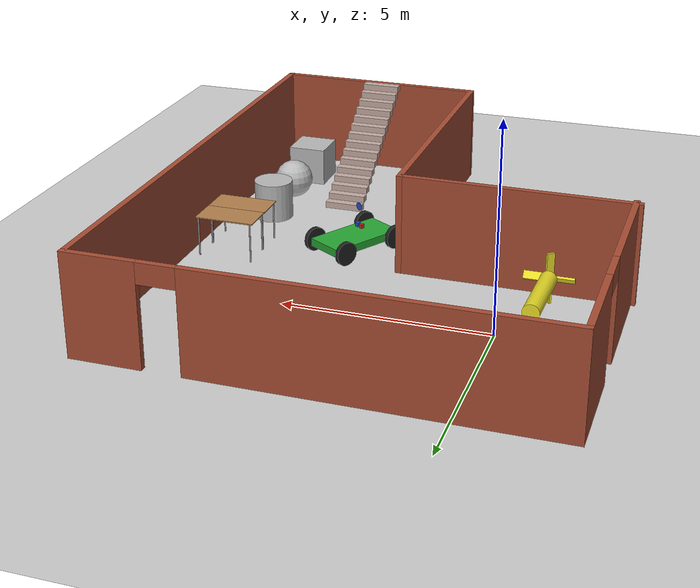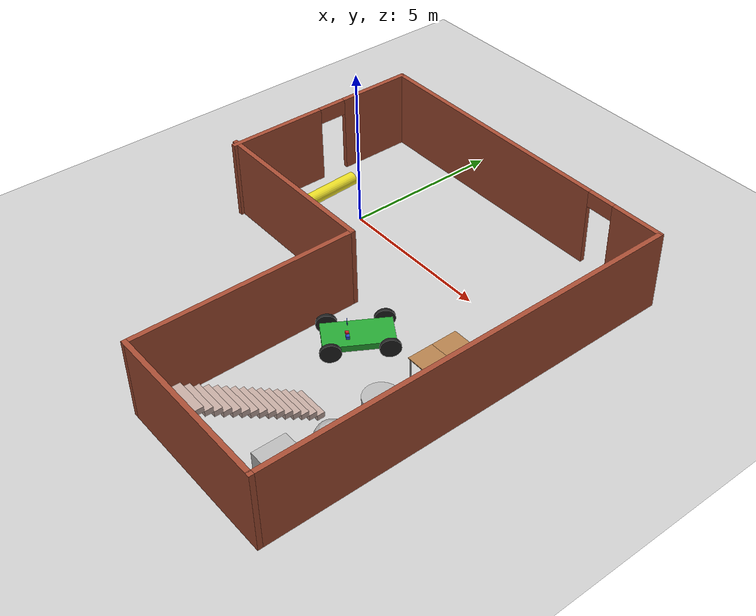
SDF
<sdf version="1.7">
 <world name="default">
  <model name="ground_plane">
   <static>1</static>
   <link name="link">
    <collision name="collision">
     <geometry><plane><normal>0 0 1</normal><size>100 100</size></plane></geometry>
     <surface><friction><ode><mu>100</mu><mu2>50</mu2></ode></friction></surface>
    </collision>
    <visual name="visual">
     <cast_shadows>0</cast_shadows>
     <geometry><plane><normal>0 0 1</normal><size>100 100</size></plane></geometry>
     <material>
      <script><uri>file://media/materials/scripts/gazebo.material</uri><name>Gazebo/Grey</name></script>
     </material>
    </visual>
   </link>
  </model>
  <model name="trees">
   <pose>2.81631 -2.80205 0 0 -0 0</pose>
   <link name="Stairs_0">
    <visual name="Stairs_0_Visual_0">
     <pose>2.66825 -3.09384 0.083333 0 -0 0</pose>
     <geometry><box><size>1 0.233333 0.166667</size></box></geometry>
     <material>
      <script><uri>file://media/materials/scripts/gazebo.material</uri><name>Gazebo/Grey</name></script>
      <ambient>0.760784 0.662745 0.627451 1</ambient>
     </material>
     <meta><layer>0</layer></meta>
    </visual>
    <collision name="Stairs_0_Collision_0">
     <geometry><box><size>1 0.233333 0.166667</size></box></geometry>
     <pose>2.66825 -3.09384 0.083333 0 -0 0</pose>
    </collision>
    <visual name="Stairs_0_Visual_1">
     <pose>2.66825 -3.32718 0.25 0 -0 0</pose>
     <geometry><box><size>1 0.233333 0.166667</size></box></geometry>
     <material>
      <script><uri>file://media/materials/scripts/gazebo.material</uri><name>Gazebo/Grey</name></script>
      <ambient>0.760784 0.662745 0.627451 1</ambient>
     </material>
     <meta><layer>0</layer></meta>
    </visual>
    <collision name="Stairs_0_Collision_1">
     <geometry><box><size>1 0.233333 0.166667</size></box></geometry>
     <pose>2.66825 -3.32718 0.25 0 -0 0</pose>
    </collision>
    <visual name="Stairs_0_Visual_2">
     <pose>2.66825 -3.56051 0.416667 0 -0 0</pose>
     <geometry><box><size>1 0.233333 0.166667</size></box></geometry>
     <material>
      <script><uri>file://media/materials/scripts/gazebo.material</uri><name>Gazebo/Grey</name></script>
      <ambient>0.760784 0.662745 0.627451 1</ambient>
     </material>
     <meta><layer>0</layer></meta>
    </visual>
    <collision name="Stairs_0_Collision_2">
     <geometry><box><size>1 0.233333 0.166667</size></box></geometry>
     <pose>2.66825 -3.56051 0.416667 0 -0 0</pose>
    </collision>
    <visual name="Stairs_0_Visual_3">
     <pose>2.66825 -3.79384 0.583333 0 -0 0</pose>
     <geometry><box><size>1 0.233333 0.166667</size></box></geometry>
     <material>
      <script><uri>file://media/materials/scripts/gazebo.material</uri><name>Gazebo/Grey</name></script>
      <ambient>0.760784 0.662745 0.627451 1</ambient>
     </material>
     <meta><layer>0</layer></meta>
    </visual>
    <collision name="Stairs_0_Collision_3">
     <geometry><box><size>1 0.233333 0.166667</size></box></geometry>
     <pose>2.66825 -3.79384 0.583333 0 -0 0</pose>
    </collision>
    <visual name="Stairs_0_Visual_4">
     <pose>2.66825 -4.02718 0.75 0 -0 0</pose>
     <geometry><box><size>1 0.233333 0.166667</size></box></geometry>
     <material>
      <script><uri>file://media/materials/scripts/gazebo.material</uri><name>Gazebo/Grey</name></script>
      <ambient>0.760784 0.662745 0.627451 1</ambient>
     </material>
     <meta><layer>0</layer></meta>
    </visual>
    <collision name="Stairs_0_Collision_4">
     <geometry><box><size>1 0.233333 0.166667</size></box></geometry>
     <pose>2.66825 -4.02718 0.75 0 -0 0</pose>
    </collision>
    <visual name="Stairs_0_Visual_5">
     <pose>2.66825 -4.26051 0.916667 0 -0 0</pose>
     <geometry><box><size>1 0.233333 0.166667</size></box></geometry>
     <material>
      <script><uri>file://media/materials/scripts/gazebo.material</uri><name>Gazebo/Grey</name></script>
      <ambient>0.760784 0.662745 0.627451 1</ambient>
     </material>
     <meta><layer>0</layer></meta>
    </visual>
    <collision name="Stairs_0_Collision_5">
     <geometry><box><size>1 0.233333 0.166667</size></box></geometry>
     <pose>2.66825 -4.26051 0.916667 0 -0 0</pose>
    </collision>
    <visual name="Stairs_0_Visual_6">
     <pose>2.66825 -4.49384 1.08333 0 -0 0</pose>
     <geometry><box><size>1 0.233333 0.166667</size></box></geometry>
     <material>
      <script><uri>file://media/materials/scripts/gazebo.material</uri><name>Gazebo/Grey</name></script>
      <ambient>0.760784 0.662745 0.627451 1</ambient>
     </material>
     <meta><layer>0</layer></meta>
    </visual>
    <collision name="Stairs_0_Collision_6">
     <geometry><box><size>1 0.233333 0.166667</size></box></geometry>
     <pose>2.66825 -4.49384 1.08333 0 -0 0</pose>
    </collision>
    <visual name="Stairs_0_Visual_7">
     <pose>2.66825 -4.72718 1.25 0 -0 0</pose>
     <geometry><box><size>1 0.233333 0.166667</size></box></geometry>
     <material>
      <script><uri>file://media/materials/scripts/gazebo.material</uri><name>Gazebo/Grey</name></script>
      <ambient>0.760784 0.662745 0.627451 1</ambient>
     </material>
     <meta><layer>0</layer></meta>
    </visual>
    <collision name="Stairs_0_Collision_7">
     <geometry><box><size>1 0.233333 0.166667</size></box></geometry>
     <pose>2.66825 -4.72718 1.25 0 -0 0</pose>
    </collision>
    <visual name="Stairs_0_Visual_8">
     <pose>2.66825 -4.96051 1.41667 0 -0 0</pose>
     <geometry><box><size>1 0.233333 0.166667</size></box></geometry>
     <material>
      <script><uri>file://media/materials/scripts/gazebo.material</uri><name>Gazebo/Grey</name></script>
      <ambient>0.760784 0.662745 0.627451 1</ambient>
     </material>
     <meta><layer>0</layer></meta>
    </visual>
    <collision name="Stairs_0_Collision_8">
     <geometry><box><size>1 0.233333 0.166667</size></box></geometry>
     <pose>2.66825 -4.96051 1.41667 0 -0 0</pose>
    </collision>
    <visual name="Stairs_0_Visual_9">
     <pose>2.66825 -5.19384 1.58333 0 -0 0</pose>
     <geometry><box><size>1 0.233333 0.166667</size></box></geometry>
     <material>
      <script><uri>file://media/materials/scripts/gazebo.material</uri><name>Gazebo/Grey</name></script>
      <ambient>0.760784 0.662745 0.627451 1</ambient>
     </material>
     <meta><layer>0</layer></meta>
    </visual>
    <collision name="Stairs_0_Collision_9">
     <geometry><box><size>1 0.233333 0.166667</size></box></geometry>
     <pose>2.66825 -5.19384 1.58333 0 -0 0</pose>
    </collision>
    <visual name="Stairs_0_Visual_10">
     <pose>2.66825 -5.42718 1.75 0 -0 0</pose>
     <geometry><box><size>1 0.233333 0.166667</size></box></geometry>
     <material>
      <script><uri>file://media/materials/scripts/gazebo.material</uri><name>Gazebo/Grey</name></script>
      <ambient>0.760784 0.662745 0.627451 1</ambient>
     </material>
     <meta><layer>0</layer></meta>
    </visual>
    <collision name="Stairs_0_Collision_10">
     <geometry><box><size>1 0.233333 0.166667</size></box></geometry>
     <pose>2.66825 -5.42718 1.75 0 -0 0</pose>
    </collision>
    <visual name="Stairs_0_Visual_11">
     <pose>2.66825 -5.66051 1.91667 0 -0 0</pose>
     <geometry><box><size>1 0.233333 0.166667</size></box></geometry>
     <material>
      <script><uri>file://media/materials/scripts/gazebo.material</uri><name>Gazebo/Grey</name></script>
      <ambient>0.760784 0.662745 0.627451 1</ambient>
     </material>
     <meta><layer>0</layer></meta>
    </visual>
    <collision name="Stairs_0_Collision_11">
     <geometry><box><size>1 0.233333 0.166667</size></box></geometry>
     <pose>2.66825 -5.66051 1.91667 0 -0 0</pose>
    </collision>
    <visual name="Stairs_0_Visual_12">
     <pose>2.66825 -5.89384 2.08333 0 -0 0</pose>
     <geometry><box><size>1 0.233333 0.166667</size></box></geometry>
     <material>
      <script><uri>file://media/materials/scripts/gazebo.material</uri><name>Gazebo/Grey</name></script>
      <ambient>0.760784 0.662745 0.627451 1</ambient>
     </material>
     <meta><layer>0</layer></meta>
    </visual>
    <collision name="Stairs_0_Collision_12">
     <geometry><box><size>1 0.233333 0.166667</size></box></geometry>
     <pose>2.66825 -5.89384 2.08333 0 -0 0</pose>
    </collision>
    <visual name="Stairs_0_Visual_13">
     <pose>2.66825 -6.12718 2.25 0 -0 0</pose>
     <geometry><box><size>1 0.233333 0.166667</size></box></geometry>
     <material>
      <script><uri>file://media/materials/scripts/gazebo.material</uri><name>Gazebo/Grey</name></script>
      <ambient>0.760784 0.662745 0.627451 1</ambient>
     </material>
     <meta><layer>0</layer></meta>
    </visual>
    <collision name="Stairs_0_Collision_13">
     <geometry><box><size>1 0.233333 0.166667</size></box></geometry>
     <pose>2.66825 -6.12718 2.25 0 -0 0</pose>
    </collision>
    <visual name="Stairs_0_Visual_14">
     <pose>2.66825 -6.36051 2.41667 0 -0 0</pose>
     <geometry><box><size>1 0.233333 0.166667</size></box></geometry>
     <material>
      <script><uri>file://media/materials/scripts/gazebo.material</uri><name>Gazebo/Grey</name></script>
      <ambient>0.760784 0.662745 0.627451 1</ambient>
     </material>
     <meta><layer>0</layer></meta>
    </visual>
    <collision name="Stairs_0_Collision_14">
     <geometry><box><size>1 0.233333 0.166667</size></box></geometry>
     <pose>2.66825 -6.36051 2.41667 0 -0 0</pose>
    </collision>
   </link>
   <link name="Wall_1">
    <pose>-5.375 3.375 0 0 -0 1.5708</pose>
    <visual name="Wall_1_Visual_0">
     <pose>-1.67166 0 1.25 0 -0 0</pose>
     <geometry><box><size>3.15669 0.15 2.5</size></box></geometry>
     <material>
      <script><uri>file://media/materials/scripts/gazebo.material</uri><name>Gazebo/Bricks</name></script>
      <ambient>0.760784 0.662745 0.627451 1</ambient>
     </material>
     <meta><layer>0</layer></meta>
    </visual>
    <collision name="Wall_1_Collision_0">
     <geometry><box><size>3.15669 0.15 2.5</size></box></geometry>
     <pose>-1.67166 0 1.25 0 -0 0</pose>
    </collision>
    <visual name="Wall_1_Visual_1">
     <pose>2.02834 0 1.25 0 -0 0</pose>
     <geometry><box><size>2.44331 0.15 2.5</size></box></geometry>
     <material>
      <script><uri>file://media/materials/scripts/gazebo.material</uri><name>Gazebo/Bricks</name></script>
      <ambient>0.760784 0.662745 0.627451 1</ambient>
     </material>
     <meta><layer>0</layer></meta>
    </visual>
    <collision name="Wall_1_Collision_1">
     <geometry><box><size>2.44331 0.15 2.5</size></box></geometry>
     <pose>2.02834 0 1.25 0 -0 0</pose>
    </collision>
    <visual name="Wall_1_Visual_2">
     <pose>0.356686 0 2.25 0 -0 0</pose>
     <geometry><box><size>0.9 0.15 0.5</size></box></geometry>
     <material>
      <script><uri>file://media/materials/scripts/gazebo.material</uri><name>Gazebo/Bricks</name></script>
      <ambient>0.760784 0.662745 0.627451 1</ambient>
     </material>
     <meta><layer>0</layer></meta>
    </visual>
    <collision name="Wall_1_Collision_2">
     <geometry><box><size>0.9 0.15 0.5</size></box></geometry>
     <pose>0.356686 0 2.25 0 -0 0</pose>
    </collision>
   </link>
   <link name="Wall_2">
    <pose>0.049999 6.55 0 0 -0 0</pose>
    <visual name="Wall_2_Visual_0">
     <pose>-1.32007 0 1.25 0 -0 0</pose>
     <geometry><box><size>8.35985 0.15 2.5</size></box></geometry>
     <material>
      <script><uri>file://media/materials/scripts/gazebo.material</uri><name>Gazebo/Bricks</name></script>
      <ambient>0.760784 0.662745 0.627451 1</ambient>
     </material>
     <meta><layer>0</layer></meta>
    </visual>
    <collision name="Wall_2_Collision_0">
     <geometry><box><size>8.35985 0.15 2.5</size></box></geometry>
     <pose>-1.32007 0 1.25 0 -0 0</pose>
    </collision>
    <visual name="Wall_2_Visual_1">
     <pose>4.62993 0 1.25 0 -0 0</pose>
     <geometry><box><size>1.74015 0.15 2.5</size></box></geometry>
     <material>
      <script><uri>file://media/materials/scripts/gazebo.material</uri><name>Gazebo/Bricks</name></script>
      <ambient>0.760784 0.662745 0.627451 1</ambient>
     </material>
     <meta><layer>0</layer></meta>
    </visual>
    <collision name="Wall_2_Collision_1">
     <geometry><box><size>1.74015 0.15 2.5</size></box></geometry>
     <pose>4.62993 0 1.25 0 -0 0</pose>
    </collision>
    <visual name="Wall_2_Visual_2">
     <pose>3.30985 0 2.25 0 -0 0</pose>
     <geometry><box><size>0.9 0.15 0.5</size></box></geometry>
     <material>
      <script><uri>file://media/materials/scripts/gazebo.material</uri><name>Gazebo/Bricks</name></script>
      <ambient>0.760784 0.662745 0.627451 1</ambient>
     </material>
     <meta><layer>0</layer></meta>
    </visual>
    <collision name="Wall_2_Collision_2">
     <geometry><box><size>0.9 0.15 0.5</size></box></geometry>
     <pose>3.30985 0 2.25 0 -0 0</pose>
    </collision>
   </link>
   <link name="Wall_3">
    <collision name="Wall_3_Collision">
     <geometry><box><size>13.25 0.15 2.5</size></box></geometry>
     <pose>0 0 1.25 0 -0 0</pose>
    </collision>
    <visual name="Wall_3_Visual">
     <pose>0 0 1.25 0 -0 0</pose>
     <geometry><box><size>13.25 0.15 2.5</size></box></geometry>
     <material>
      <script><uri>file://media/materials/scripts/gazebo.material</uri><name>Gazebo/Bricks</name></script>
      <ambient>1 1 1 1</ambient>
     </material>
     <meta><layer>0</layer></meta>
    </visual>
    <pose>5.475 0 0 0 -0 -1.5708</pose>
   </link>
   <link name="Wall_4">
    <collision name="Wall_4_Collision">
     <geometry><box><size>5.5 0.15 2.5</size></box></geometry>
     <pose>0 0 1.25 0 -0 0</pose>
    </collision>
    <visual name="Wall_4_Visual">
     <pose>0 0 1.25 0 -0 0</pose>
     <geometry><box><size>5.5 0.15 2.5</size></box></geometry>
     <material>
      <script><uri>file://media/materials/scripts/gazebo.material</uri><name>Gazebo/Bricks</name></script>
      <ambient>1 1 1 1</ambient>
     </material>
     <meta><layer>0</layer></meta>
    </visual>
    <pose>2.8 -6.55 0 0 -0 3.14159</pose>
   </link>
   <link name="Wall_5">
    <collision name="Wall_5_Collision">
     <geometry><box><size>7 0.15 2.5</size></box></geometry>
     <pose>0 0 1.25 0 -0 0</pose>
    </collision>
    <visual name="Wall_5_Visual">
     <pose>0 0 1.25 0 -0 0</pose>
     <geometry><box><size>7 0.15 2.5</size></box></geometry>
     <material>
      <script><uri>file://media/materials/scripts/gazebo.material</uri><name>Gazebo/Bricks</name></script>
      <ambient>1 1 1 1</ambient>
     </material>
     <meta><layer>0</layer></meta>
    </visual>
    <pose>0.125 -3.125 0 0 -0 1.5708</pose>
   </link>
   <link name="Wall_6">
    <collision name="Wall_6_Collision">
     <geometry><box><size>5.75 0.15 2.5</size></box></geometry>
     <pose>0 0 1.25 0 -0 0</pose>
    </collision>
    <visual name="Wall_6_Visual">
     <pose>0 0 1.25 0 -0 0</pose>
     <geometry><box><size>5.75 0.15 2.5</size></box></geometry>
     <material>
      <script><uri>file://media/materials/scripts/gazebo.material</uri><name>Gazebo/Bricks</name></script>
      <ambient>1 1 1 1</ambient>
     </material>
     <meta><layer>0</layer></meta>
    </visual>
    <pose>-2.675 0.3 0 0 -0 3.14159</pose>
   </link>
   <static>1</static>
  </model>
  <model name="car">
   <link name="chassis">
    <pose>0 0 0.3 0 -0 0</pose>
    <collision name="collision"><geometry><box><size>2 1 0.2</size></box></geometry></collision>
    <visual name="visual">
     <geometry><box><size>2 1 0.2</size></box></geometry>
     <material>
      <script><uri>file://media/materials/scripts/gazebo.material</uri><name>Gazebo/Green</name></script>
     </material>
    </visual>
    <inertial>
     <inertia><ixx>1</ixx><ixy>0</ixy><ixz>0</ixz><iyy>1</iyy><iyz>0</iyz><izz>1</izz></inertia>
     <mass>1</mass>
    </inertial>
   </link>
   <link name="front_left_wheel">
    <pose>0.8 0.6 0.3 -0 1.5707 1.5707</pose>
    <collision name="collision">
     <geometry><cylinder><radius>0.3</radius><length>0.1</length></cylinder></geometry>
    </collision>
    <visual name="visual">
     <geometry><cylinder><radius>0.3</radius><length>0.1</length></cylinder></geometry>
     <material>
      <script><uri>file://media/materials/scripts/gazebo.material</uri><name>Gazebo/Black</name></script>
     </material>
    </visual>
    <inertial>
     <inertia><ixx>1</ixx><ixy>0</ixy><ixz>0</ixz><iyy>1</iyy><iyz>0</iyz><izz>1</izz></inertia>
     <mass>1</mass>
    </inertial>
   </link>
   <link name="front_right_wheel">
    <pose>0.8 -0.6 0.3 -0 1.5707 1.5707</pose>
    <collision name="collision">
     <geometry><cylinder><radius>0.3</radius><length>0.1</length></cylinder></geometry>
    </collision>
    <visual name="visual">
     <geometry><cylinder><radius>0.3</radius><length>0.1</length></cylinder></geometry>
     <material>
      <script><uri>file://media/materials/scripts/gazebo.material</uri><name>Gazebo/Black</name></script>
     </material>
    </visual>
    <inertial>
     <inertia><ixx>1</ixx><ixy>0</ixy><ixz>0</ixz><iyy>1</iyy><iyz>0</iyz><izz>1</izz></inertia>
     <mass>1</mass>
    </inertial>
   </link>
   <link name="back_right_wheel">
    <pose>-0.8 -0.6 0.3 -0 1.5707 1.5707</pose>
    <collision name="collision">
     <geometry><cylinder><radius>0.3</radius><length>0.1</length></cylinder></geometry>
    </collision>
    <visual name="visual">
     <geometry><cylinder><radius>0.3</radius><length>0.1</length></cylinder></geometry>
     <material>
      <script><uri>file://media/materials/scripts/gazebo.material</uri><name>Gazebo/Black</name></script>
     </material>
    </visual>
    <inertial>
     <inertia><ixx>1</ixx><ixy>0</ixy><ixz>0</ixz><iyy>1</iyy><iyz>0</iyz><izz>1</izz></inertia>
     <mass>1</mass>
    </inertial>
   </link>
   <link name="back_left_wheel">
    <pose>-0.8 0.6 0.3 -0 1.5707 1.5707</pose>
    <collision name="collision">
     <geometry><cylinder><radius>0.3</radius><length>0.1</length></cylinder></geometry>
    </collision>
    <visual name="visual">
     <geometry><cylinder><radius>0.3</radius><length>0.1</length></cylinder></geometry>
     <material>
      <script><uri>file://media/materials/scripts/gazebo.material</uri><name>Gazebo/Black</name></script>
     </material>
    </visual>
    <inertial>
     <inertia><ixx>1</ixx><ixy>0</ixy><ixz>0</ixz><iyy>1</iyy><iyz>0</iyz><izz>1</izz></inertia>
     <mass>1</mass>
    </inertial>
   </link>
   <link name="gas_pedal">
    <pose>0.3 0.1 0.5 0 -0 0</pose>
    <collision name="collision"><geometry><box><size>0.1 0.1 0.1</size></box></geometry></collision>
    <visual name="visual">
     <geometry><box><size>0.1 0.1 0.1</size></box></geometry>
     <material>
      <script><uri>file://media/materials/scripts/gazebo.material</uri><name>Gazebo/Red</name></script>
     </material>
    </visual>
    <inertial>
     <inertia><ixx>1</ixx><ixy>0</ixy><ixz>0</ixz><iyy>1</iyy><iyz>0</iyz><izz>1</izz></inertia>
     <mass>1</mass>
    </inertial>
   </link>
   <link name="brake_pedal">
    <pose>0.3 0.25 0.5 0 -0 0</pose>
    <collision name="collision"><geometry><box><size>0.1 0.1 0.1</size></box></geometry></collision>
    <visual name="visual">
     <geometry><box><size>0.1 0.1 0.1</size></box></geometry>
     <material>
      <script><uri>file://media/materials/scripts/gazebo.material</uri><name>Gazebo/Blue</name></script>
     </material>
    </visual>
    <inertial>
     <inertia><ixx>1</ixx><ixy>0</ixy><ixz>0</ixz><iyy>1</iyy><iyz>0</iyz><izz>1</izz></inertia>
     <mass>1</mass>
    </inertial>
   </link>
   <link name="steering_wheel">
    <pose>0.3 0.2 1 0 1.5707 0</pose>
    <collision name="collision">
     <geometry><cylinder><radius>0.1</radius><length>0.01</length></cylinder></geometry>
    </collision>
    <visual name="visual">
     <geometry><cylinder><radius>0.1</radius><length>0.01</length></cylinder></geometry>
     <material>
      <script><uri>file://media/materials/scripts/gazebo.material</uri><name>Gazebo/Blue</name></script>
     </material>
    </visual>
    <inertial>
     <inertia><ixx>1</ixx><ixy>0</ixy><ixz>0</ixz><iyy>1</iyy><iyz>0</iyz><izz>1</izz></inertia>
     <mass>1</mass>
    </inertial>
   </link>
   <joint name="gas_joint" type="prismatic">
    <parent>chassis</parent>
    <child>gas_pedal</child>
    <axis>
     <xyz expressed_in="__model__">1 0 0</xyz>
     <limit><lower>0</lower><upper>0.2</upper></limit>
     <dynamics><spring_reference>0</spring_reference><spring_stiffness>0</spring_stiffness></dynamics>
    </axis>
   </joint>
   <joint name="brake_joint" type="prismatic">
    <parent>chassis</parent>
    <child>brake_pedal</child>
    <axis>
     <xyz expressed_in="__model__">1 0 0</xyz>
     <limit><lower>0</lower><upper>0.2</upper></limit>
     <dynamics><spring_reference>0</spring_reference><spring_stiffness>0</spring_stiffness></dynamics>
    </axis>
   </joint>
   <joint name="steering_joint" type="revolute">
    <parent>chassis</parent>
    <child>steering_wheel</child>
    <axis>
     <xyz expressed_in="__model__">1 0 0</xyz>
     <limit><lower>-7.853</lower><upper>7.853</upper></limit>
     <dynamics><spring_reference>0</spring_reference><spring_stiffness>0</spring_stiffness></dynamics>
    </axis>
   </joint>
   <joint name="front_left_joint" type="revolute2">
    <parent>chassis</parent>
    <child>front_left_wheel</child>
    <axis>
     <xyz expressed_in="__model__">0 0 1</xyz>
     <limit><lower>0.00481351</lower><upper>0.00481351</upper></limit>
     <dynamics><spring_reference>0</spring_reference><spring_stiffness>0</spring_stiffness></dynamics>
    </axis>
    <axis2>
     <xyz expressed_in="__model__">0 1 0</xyz>
     <limit><upper>1e+16</upper><lower>-1e+16</lower></limit>
     <dynamics><spring_reference>0</spring_reference><spring_stiffness>0</spring_stiffness></dynamics>
    </axis2>
    <physics><ode><limit><cfm>0</cfm><erp>0.9</erp></limit></ode></physics>
   </joint>
   <joint name="front_right_joint" type="revolute2">
    <parent>chassis</parent>
    <child>front_right_wheel</child>
    <axis>
     <xyz expressed_in="__model__">0 0 1</xyz>
     <limit><lower>0.00481351</lower><upper>0.00481351</upper></limit>
     <dynamics><spring_reference>0</spring_reference><spring_stiffness>0</spring_stiffness></dynamics>
    </axis>
    <axis2>
     <xyz expressed_in="__model__">0 1 0</xyz>
     <limit><upper>1e+16</upper><lower>-1e+16</lower></limit>
     <dynamics><spring_reference>0</spring_reference><spring_stiffness>0</spring_stiffness></dynamics>
    </axis2>
    <physics><ode><limit><cfm>0</cfm><erp>0.9</erp></limit></ode></physics>
   </joint>
   <joint name="back_right_joint" type="revolute2">
    <parent>chassis</parent>
    <child>back_right_wheel</child>
    <axis>
     <xyz expressed_in="__model__">0 0 1</xyz>
     <limit><lower>0</lower><upper>0</upper></limit>
     <dynamics><spring_reference>0</spring_reference><spring_stiffness>0</spring_stiffness></dynamics>
    </axis>
    <axis2>
     <xyz expressed_in="__model__">0 1 0</xyz>
     <limit><upper>1e+16</upper><lower>-1e+16</lower></limit>
     <dynamics><spring_reference>0</spring_reference><spring_stiffness>0</spring_stiffness></dynamics>
    </axis2>
    <physics><ode><limit><cfm>0</cfm><erp>0.9</erp></limit></ode></physics>
   </joint>
   <joint name="back_left_joint" type="revolute2">
    <parent>chassis</parent>
    <child>back_left_wheel</child>
    <axis>
     <xyz expressed_in="__model__">0 0 1</xyz>
     <limit><lower>0</lower><upper>0</upper></limit>
     <dynamics><spring_reference>0</spring_reference><spring_stiffness>0</spring_stiffness></dynamics>
    </axis>
    <axis2>
     <xyz expressed_in="__model__">0 1 0</xyz>
     <limit><upper>1e+16</upper><lower>-1e+16</lower></limit>
     <dynamics><spring_reference>0</spring_reference><spring_stiffness>0</spring_stiffness></dynamics>
    </axis2>
    <physics><ode><limit><cfm>0</cfm><erp>0.9</erp></limit></ode></physics>
   </joint>
   <plugin name="vehicle" filename="libVehiclePlugin.so">
    <front_left>front_left_joint</front_left>
    <front_right>front_right_joint</front_right>
    <back_left>back_left_joint</back_left>
    <back_right>back_right_joint</back_right>
    <gas>gas_joint</gas>
    <brake>brake_joint</brake>
    <steering>steering_joint</steering>
    <front_power>10</front_power>
    <rear_power>10</rear_power>
    <tire_angle_range>0.5</tire_angle_range>
    <max_speed>10</max_speed>
    <aero_load>0.1</aero_load>
   </plugin>
   <pose>4.37751 -3.47074 7.8e-05 0.000117 7e-06 -2.11765</pose>
  </model>
  <model name="textured_shapes">
   <pose>7.10799 -6.34619 0.5 0 -0 0</pose>
   <link name="box">
    <pose>0 -1.5 0 0 -0 0</pose>
    <collision name="collision"><geometry><box><size>1 1 1</size></box></geometry></collision>
    <visual name="visual">
     <geometry><box><size>1 1 1</size></box></geometry>
     <material>
      <script>
       <uri>model://textured_shapes/materials/scripts</uri>
       <uri>model://textured_shapes/materials/textures</uri>
       <name>TexturedShape/Squares</name>
      </script>
     </material>
    </visual>
    <inertial>
     <inertia><ixx>1</ixx><ixy>0</ixy><ixz>0</ixz><iyy>1</iyy><iyz>0</iyz><izz>1</izz></inertia>
     <mass>1</mass>
    </inertial>
   </link>
   <link name="sphere">
    <collision name="collision"><geometry><sphere><radius>0.5</radius></sphere></geometry></collision>
    <visual name="visual">
     <geometry><sphere><radius>0.5</radius></sphere></geometry>
     <material>
      <script>
       <uri>model://textured_shapes/materials/scripts</uri>
       <uri>model://textured_shapes/materials/textures</uri>
       <name>TexturedShape/Squares</name>
      </script>
     </material>
    </visual>
    <inertial>
     <inertia><ixx>1</ixx><ixy>0</ixy><ixz>0</ixz><iyy>1</iyy><iyz>0</iyz><izz>1</izz></inertia>
     <mass>1</mass>
    </inertial>
   </link>
   <link name="cylinder">
    <pose>0 1.5 0 0 -0 0</pose>
    <collision name="collision">
     <geometry><cylinder><radius>0.5</radius><length>1</length></cylinder></geometry>
    </collision>
    <visual name="visual">
     <geometry><cylinder><radius>0.5</radius><length>1</length></cylinder></geometry>
     <material>
      <script>
       <uri>model://textured_shapes/materials/scripts</uri>
       <uri>model://textured_shapes/materials/textures</uri>
       <name>TexturedShape/Squares</name>
      </script>
     </material>
    </visual>
    <inertial>
     <inertia><ixx>1</ixx><ixy>0</ixy><ixz>0</ixz><iyy>1</iyy><iyz>0</iyz><izz>1</izz></inertia>
     <mass>1</mass>
    </inertial>
   </link>
  </model>
  <model name="table">
   <static>1</static>
   <link name="link">
    <collision name="surface">
     <pose>0 0 1 0 -0 0</pose>
     <geometry><box><size>1.5 0.8 0.03</size></box></geometry>
     <surface><friction><ode><mu>0.6</mu><mu2>0.6</mu2></ode></friction></surface>
    </collision>
    <visual name="visual1">
     <pose>0 0 1 0 -0 0</pose>
     <geometry><box><size>1.5 0.8 0.03</size></box></geometry>
     <material>
      <script><uri>file://media/materials/scripts/gazebo.material</uri><name>Gazebo/Wood</name></script>
     </material>
    </visual>
    <collision name="front_left_leg">
     <pose>0.68 0.38 0.5 0 -0 0</pose>
     <geometry><cylinder><radius>0.02</radius><length>1</length></cylinder></geometry>
    </collision>
    <visual name="front_left_leg">
     <pose>0.68 0.38 0.5 0 -0 0</pose>
     <geometry><cylinder><radius>0.02</radius><length>1</length></cylinder></geometry>
     <material>
      <script><uri>file://media/materials/scripts/gazebo.material</uri><name>Gazebo/Grey</name></script>
     </material>
    </visual>
    <collision name="front_right_leg">
     <pose>0.68 -0.38 0.5 0 -0 0</pose>
     <geometry><cylinder><radius>0.02</radius><length>1</length></cylinder></geometry>
    </collision>
    <visual name="front_right_leg">
     <pose>0.68 -0.38 0.5 0 -0 0</pose>
     <geometry><cylinder><radius>0.02</radius><length>1</length></cylinder></geometry>
     <material>
      <script><uri>file://media/materials/scripts/gazebo.material</uri><name>Gazebo/Grey</name></script>
     </material>
    </visual>
    <collision name="back_right_leg">
     <pose>-0.68 -0.38 0.5 0 -0 0</pose>
     <geometry><cylinder><radius>0.02</radius><length>1</length></cylinder></geometry>
    </collision>
    <visual name="back_right_leg">
     <pose>-0.68 -0.38 0.5 0 -0 0</pose>
     <geometry><cylinder><radius>0.02</radius><length>1</length></cylinder></geometry>
     <material>
      <script><uri>file://media/materials/scripts/gazebo.material</uri><name>Gazebo/Grey</name></script>
     </material>
    </visual>
    <collision name="back_left_leg">
     <pose>-0.68 0.38 0.5 0 -0 0</pose>
     <geometry><cylinder><radius>0.02</radius><length>1</length></cylinder></geometry>
    </collision>
    <visual name="back_left_leg">
     <pose>-0.68 0.38 0.5 0 -0 0</pose>
     <geometry><cylinder><radius>0.02</radius><length>1</length></cylinder></geometry>
     <material>
      <script><uri>file://media/materials/scripts/gazebo.material</uri><name>Gazebo/Grey</name></script>
     </material>
    </visual>
   </link>
   <pose>7.23647 -3.07763 0 0 -0 0</pose>
  </model>
  <model name="table_0">
   <static>1</static>
   <link name="link">
    <collision name="surface">
     <pose>0 0 1 0 -0 0</pose>
     <geometry><box><size>1.5 0.8 0.03</size></box></geometry>
     <surface><friction><ode><mu>0.6</mu><mu2>0.6</mu2></ode></friction></surface>
    </collision>
    <visual name="visual1">
     <pose>0 0 1 0 -0 0</pose>
     <geometry><box><size>1.5 0.8 0.03</size></box></geometry>
     <material>
      <script><uri>file://media/materials/scripts/gazebo.material</uri><name>Gazebo/Wood</name></script>
     </material>
    </visual>
    <collision name="front_left_leg">
     <pose>0.68 0.38 0.5 0 -0 0</pose>
     <geometry><cylinder><radius>0.02</radius><length>1</length></cylinder></geometry>
    </collision>
    <visual name="front_left_leg">
     <pose>0.68 0.38 0.5 0 -0 0</pose>
     <geometry><cylinder><radius>0.02</radius><length>1</length></cylinder></geometry>
     <material>
      <script><uri>file://media/materials/scripts/gazebo.material</uri><name>Gazebo/Grey</name></script>
     </material>
    </visual>
    <collision name="front_right_leg">
     <pose>0.68 -0.38 0.5 0 -0 0</pose>
     <geometry><cylinder><radius>0.02</radius><length>1</length></cylinder></geometry>
    </collision>
    <visual name="front_right_leg">
     <pose>0.68 -0.38 0.5 0 -0 0</pose>
     <geometry><cylinder><radius>0.02</radius><length>1</length></cylinder></geometry>
     <material>
      <script><uri>file://media/materials/scripts/gazebo.material</uri><name>Gazebo/Grey</name></script>
     </material>
    </visual>
    <collision name="back_right_leg">
     <pose>-0.68 -0.38 0.5 0 -0 0</pose>
     <geometry><cylinder><radius>0.02</radius><length>1</length></cylinder></geometry>
    </collision>
    <visual name="back_right_leg">
     <pose>-0.68 -0.38 0.5 0 -0 0</pose>
     <geometry><cylinder><radius>0.02</radius><length>1</length></cylinder></geometry>
     <material>
      <script><uri>file://media/materials/scripts/gazebo.material</uri><name>Gazebo/Grey</name></script>
     </material>
    </visual>
    <collision name="back_left_leg">
     <pose>-0.68 0.38 0.5 0 -0 0</pose>
     <geometry><cylinder><radius>0.02</radius><length>1</length></cylinder></geometry>
    </collision>
    <visual name="back_left_leg">
     <pose>-0.68 0.38 0.5 0 -0 0</pose>
     <geometry><cylinder><radius>0.02</radius><length>1</length></cylinder></geometry>
     <material>
      <script><uri>file://media/materials/scripts/gazebo.material</uri><name>Gazebo/Grey</name></script>
     </material>
    </visual>
   </link>
   <pose>7.2395 -2.28529 0 0 -0 0</pose>
  </model>
  <model name="submarine">
   <pose>-0.851442 -0.594481 0.834755 1.62542 -0 0</pose>
   <link name="body">
    <inertial>
     <mass>251.327</mass>
     <inertia><ixx>86.2891</ixx><ixy>0</ixy><ixz>0</ixz><iyy>86.2891</iyy><iyz>0</iyz><izz>5.02655</izz></inertia>
    </inertial>
    <visual name="body_visual">
     <geometry><cylinder><radius>0.2</radius><length>2</length></cylinder></geometry>
     <material>
      <script><uri>file://media/materials/scripts/gazebo.material</uri><name>Gazebo/Yellow</name></script>
     </material>
    </visual>
    <collision name="body_collision">
     <geometry><cylinder><radius>0.2</radius><length>2</length></cylinder></geometry>
    </collision>
    <visual name="spacer_visual">
     <pose>0 0 1.05855 0 -0 0</pose>
     <geometry><cylinder><radius>0.0933402</radius><length>0.127211</length></cylinder></geometry>
     <material>
      <script><uri>file://media/materials/scripts/gazebo.material</uri><name>Gazebo/Yellow</name></script>
     </material>
    </visual>
   </link>
   <link name="propeller">
    <pose>0 0 1.09 3.14159 -0 0</pose>
    <inertial>
     <mass>21.82</mass>
     <inertia>
      <ixx>0.459994</ixx>
      <ixy>0</ixy>
      <ixz>0</ixz>
      <iyy>0.459994</iyy>
      <iyz>0</iyz>
      <izz>0.909167</izz>
     </inertia>
    </inertial>
    <visual name="blade1_visual">
     <pose>0.34334 0 0 0.785398 -0 0</pose>
     <geometry><box><size>0.5 0.2 0.05455</size></box></geometry>
     <material>
      <script><uri>file://media/materials/scripts/gazebo.material</uri><name>Gazebo/Yellow</name></script>
     </material>
    </visual>
    <collision name="blade1_collision">
     <pose>0.34334 0 0 0.785398 -0 0</pose>
     <geometry><box><size>0.5 0.2 0.05455</size></box></geometry>
    </collision>
    <visual name="blade2_visual">
     <pose>0 0.34334 0 0.785398 0 1.5708</pose>
     <geometry><box><size>0.5 0.2 0.05455</size></box></geometry>
     <material>
      <script><uri>file://media/materials/scripts/gazebo.material</uri><name>Gazebo/Yellow</name></script>
     </material>
    </visual>
    <collision name="blade2_collision">
     <pose>0 0.34334 0 0.785398 0 1.5708</pose>
     <geometry><box><size>0.5 0.2 0.05455</size></box></geometry>
    </collision>
    <visual name="blade3_visual">
     <pose>-0.34334 -0 0 -0.785398 0 0</pose>
     <geometry><box><size>0.5 0.2 0.05455</size></box></geometry>
     <material>
      <script><uri>file://media/materials/scripts/gazebo.material</uri><name>Gazebo/Yellow</name></script>
     </material>
    </visual>
    <collision name="blade3_collision">
     <pose>-0.34334 -0 0 -0.785398 0 0</pose>
     <geometry><box><size>0.5 0.2 0.05455</size></box></geometry>
    </collision>
    <visual name="blade4_visual">
     <pose>-0 -0.34334 0 -0.785398 -0 1.5708</pose>
     <geometry><box><size>0.5 0.2 0.05455</size></box></geometry>
     <material>
      <script><uri>file://media/materials/scripts/gazebo.material</uri><name>Gazebo/Yellow</name></script>
     </material>
    </visual>
    <collision name="blade4_collision">
     <pose>-0 -0.34334 0 -0.785398 -0 1.5708</pose>
     <geometry><box><size>0.5 0.2 0.05455</size></box></geometry>
    </collision>
   </link>
   <joint name="spinning_joint" type="revolute">
    <parent>body</parent>
    <child>propeller</child>
    <axis>
     <xyz expressed_in="__model__">0 0 1</xyz>
     <limit><lower>-1e+12</lower><upper>1e+12</upper><effort>-1</effort><velocity>-1</velocity></limit>
     <dynamics><spring_reference>0</spring_reference><spring_stiffness>0</spring_stiffness></dynamics>
    </axis>
   </joint>
   <plugin name="submarine_propeller_1" filename="libLiftDragPlugin.so">
    <air_density>1000</air_density>
    <cla>1.2535816618911175</cla>
    <cla_stall>-1.4326647564469914</cla_stall>
    <cda>0</cda>
    <cda_stall>1.4326647564469914</cda_stall>
    <alpha_stall>1.396</alpha_stall>
    <a0>0</a0>
    <area>0.27637</area>
    <upward>0 -0.7071067811865476 -0.7071067811865475</upward>
    <forward>0 -0.7071067811865475 0.7071067811865476</forward>
    <link_name>propeller</link_name>
    <cp>0.35 0 0</cp>
   </plugin>
   <plugin name="submarine_propeller_2" filename="libLiftDragPlugin.so">
    <air_density>1000</air_density>
    <cla>1.2535816618911175</cla>
    <cla_stall>-1.4326647564469914</cla_stall>
    <cda>0</cda>
    <cda_stall>1.4326647564469914</cda_stall>
    <alpha_stall>1.396</alpha_stall>
    <a0>0</a0>
    <area>0.27637</area>
    <upward>-0.7071067811865475 0 -0.7071067811865476</upward>
    <forward>-0.7071067811865476 0 0.7071067811865475</forward>
    <link_name>propeller</link_name>
    <cp>0 -0.35 0</cp>
   </plugin>
   <plugin name="submarine_propeller_3" filename="libLiftDragPlugin.so">
    <air_density>1000</air_density>
    <cla>1.2535816618911175</cla>
    <cla_stall>-1.4326647564469914</cla_stall>
    <cda>0</cda>
    <cda_stall>1.4326647564469914</cda_stall>
    <alpha_stall>1.396</alpha_stall>
    <a0>0</a0>
    <area>0.27637</area>
    <upward>0 0.7071067811865475 -0.7071067811865476</upward>
    <forward>0 -0.7071067811865476 -0.7071067811865475</forward>
    <link_name>propeller</link_name>
    <cp>-0.35 0 0</cp>
   </plugin>
   <plugin name="submarine_propeller_4" filename="libLiftDragPlugin.so">
    <air_density>1000</air_density>
    <cla>1.2535816618911175</cla>
    <cla_stall>-1.4326647564469914</cla_stall>
    <cda>0</cda>
    <cda_stall>1.4326647564469914</cda_stall>
    <alpha_stall>1.396</alpha_stall>
    <a0>0</a0>
    <area>0.27637</area>
    <upward>0.7071067811865476 0 -0.7071067811865475</upward>
    <forward>0.7071067811865475 0 0.7071067811865476</forward>
    <link_name>propeller</link_name>
    <cp>0 0.35 0</cp>
   </plugin>
   <plugin name="buoyancy" filename="libBuoyancyPlugin.so"><fluid_density>1000</fluid_density></plugin>
  </model>
 </world>
</sdf>
